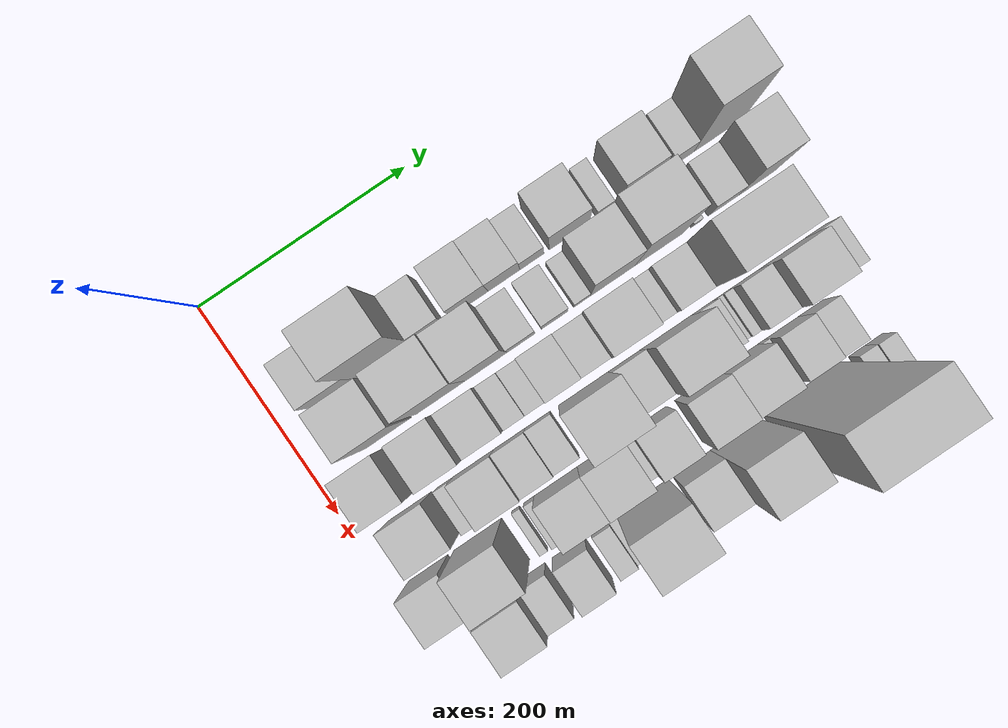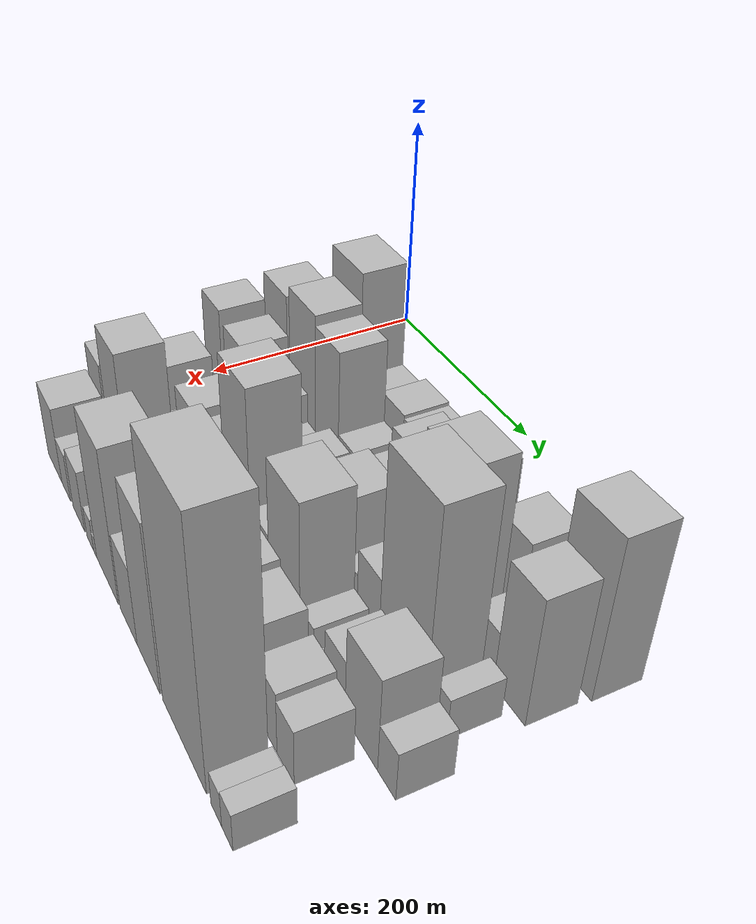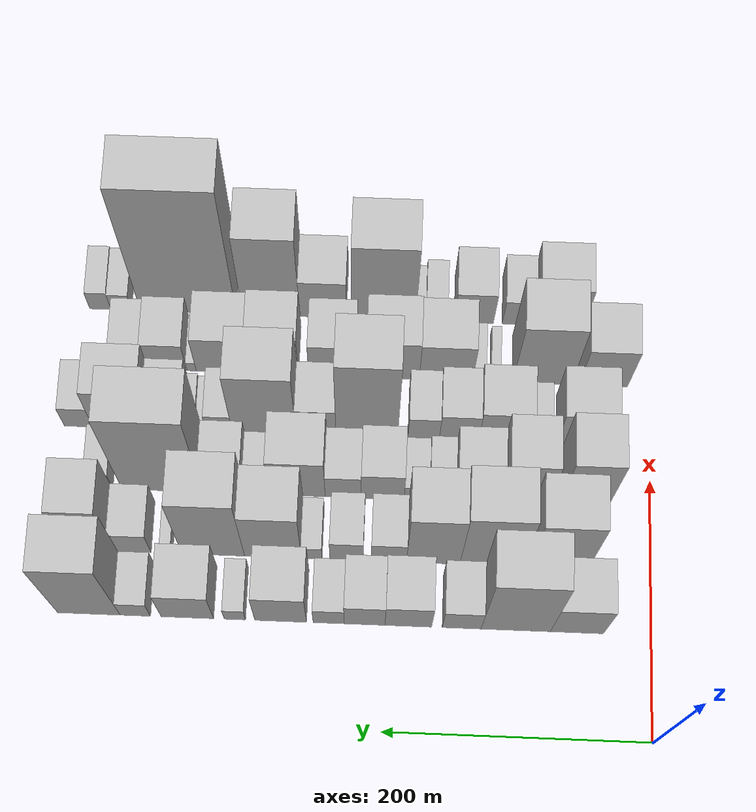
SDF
<sdf version="1.6">
 <world name="default">
  <model name="building_24">
   <static>1</static>
   <pose>100.0000 55.8594 0 0.000000 0.000000 0.000000</pose>
   <link name="link">
    <pose>0 0 37.50 0 0 0</pose>
    <collision name="collision"><geometry><box><size>40.0000 39.8710 75.0000</size></box></geometry></collision>
    <visual name="visual">
     <cast_shadows>0</cast_shadows>
     <geometry><box><size>40.0000 39.8710 75.0000</size></box></geometry>
     <material>
      <script>
       <uri>model://HANNAS_wall/materials/scripts</uri>
       <uri>model://HANNAS_wall/materials/textures</uri>
       <name>vrc/HANNAS_wall</name>
      </script>
     </material>
    </visual>
   </link>
  </model>
  <model name="building_25">
   <static>1</static>
   <pose>100.0000 101.7549 0 0.000000 0.000000 0.000000</pose>
   <link name="link">
    <pose>0 0 73.50 0 0 0</pose>
    <collision name="collision"><geometry><box><size>40.0000 51.9200 147.0000</size></box></geometry></collision>
    <visual name="visual">
     <cast_shadows>0</cast_shadows>
     <geometry><box><size>40.0000 51.9200 147.0000</size></box></geometry>
     <material>
      <script>
       <uri>model://HANNAS_wall/materials/scripts</uri>
       <uri>model://HANNAS_wall/materials/textures</uri>
       <name>vrc/HANNAS_wall</name>
      </script>
     </material>
    </visual>
   </link>
  </model>
  <model name="building_26">
   <static>1</static>
   <pose>100.0000 142.2153 0 0.000000 0.000000 0.000000</pose>
   <link name="link">
    <pose>0 0 25.50 0 0 0</pose>
    <collision name="collision"><geometry><box><size>40.0000 29.0008 51.0000</size></box></geometry></collision>
    <visual name="visual">
     <cast_shadows>0</cast_shadows>
     <geometry><box><size>40.0000 29.0008 51.0000</size></box></geometry>
     <material>
      <script>
       <uri>model://HANNAS_wall/materials/scripts</uri>
       <uri>model://HANNAS_wall/materials/textures</uri>
       <name>vrc/HANNAS_wall</name>
      </script>
     </material>
    </visual>
   </link>
  </model>
  <model name="building_27">
   <static>1</static>
   <pose>100.0000 182.2322 0 0.000000 0.000000 0.000000</pose>
   <link name="link">
    <pose>0 0 30.00 0 0 0</pose>
    <collision name="collision"><geometry><box><size>40.0000 35.0331 60.0000</size></box></geometry></collision>
    <visual name="visual">
     <cast_shadows>0</cast_shadows>
     <geometry><box><size>40.0000 35.0331 60.0000</size></box></geometry>
     <material>
      <script>
       <uri>model://HANNAS_wall/materials/scripts</uri>
       <uri>model://HANNAS_wall/materials/textures</uri>
       <name>vrc/HANNAS_wall</name>
      </script>
     </material>
    </visual>
   </link>
  </model>
  <model name="building_28">
   <static>1</static>
   <pose>100.0000 215.0473 0 0.000000 0.000000 0.000000</pose>
   <link name="link">
    <pose>0 0 28.50 0 0 0</pose>
    <collision name="collision"><geometry><box><size>40.0000 30.5970 57.0000</size></box></geometry></collision>
    <visual name="visual">
     <cast_shadows>0</cast_shadows>
     <geometry><box><size>40.0000 30.5970 57.0000</size></box></geometry>
     <material>
      <script>
       <uri>model://HANNAS_wall/materials/scripts</uri>
       <uri>model://HANNAS_wall/materials/textures</uri>
       <name>vrc/HANNAS_wall</name>
      </script>
     </material>
    </visual>
   </link>
  </model>
  <model name="building_29">
   <static>1</static>
   <pose>100.0000 241.9303 0 0.000000 0.000000 0.000000</pose>
   <link name="link">
    <pose>0 0 21.00 0 0 0</pose>
    <collision name="collision"><geometry><box><size>40.0000 23.1691 42.0000</size></box></geometry></collision>
    <visual name="visual">
     <cast_shadows>0</cast_shadows>
     <geometry><box><size>40.0000 23.1691 42.0000</size></box></geometry>
     <material>
      <script>
       <uri>model://HANNAS_wall/materials/scripts</uri>
       <uri>model://HANNAS_wall/materials/textures</uri>
       <name>vrc/HANNAS_wall</name>
      </script>
     </material>
    </visual>
   </link>
  </model>
  <model name="building_30">
   <static>1</static>
   <pose>100.0000 277.9306 0 0.000000 0.000000 0.000000</pose>
   <link name="link">
    <pose>0 0 37.50 0 0 0</pose>
    <collision name="collision"><geometry><box><size>40.0000 38.8315 75.0000</size></box></geometry></collision>
    <visual name="visual">
     <cast_shadows>0</cast_shadows>
     <geometry><box><size>40.0000 38.8315 75.0000</size></box></geometry>
     <material>
      <script>
       <uri>model://HANNAS_wall/materials/scripts</uri>
       <uri>model://HANNAS_wall/materials/textures</uri>
       <name>vrc/HANNAS_wall</name>
      </script>
     </material>
    </visual>
   </link>
  </model>
  <model name="building_31">
   <static>1</static>
   <pose>100.0000 312.3126 0 0.000000 0.000000 0.000000</pose>
   <link name="link">
    <pose>0 0 15.00 0 0 0</pose>
    <collision name="collision"><geometry><box><size>40.0000 15.9323 30.0000</size></box></geometry></collision>
    <visual name="visual">
     <cast_shadows>0</cast_shadows>
     <geometry><box><size>40.0000 15.9323 30.0000</size></box></geometry>
     <material>
      <script>
       <uri>model://HANNAS_wall/materials/scripts</uri>
       <uri>model://HANNAS_wall/materials/textures</uri>
       <name>vrc/HANNAS_wall</name>
      </script>
     </material>
    </visual>
   </link>
  </model>
  <model name="building_32">
   <static>1</static>
   <pose>100.0000 348.0190 0 0.000000 0.000000 0.000000</pose>
   <link name="link">
    <pose>0 0 34.50 0 0 0</pose>
    <collision name="collision"><geometry><box><size>40.0000 39.4806 69.0000</size></box></geometry></collision>
    <visual name="visual">
     <cast_shadows>0</cast_shadows>
     <geometry><box><size>40.0000 39.4806 69.0000</size></box></geometry>
     <material>
      <script>
       <uri>model://HANNAS_wall/materials/scripts</uri>
       <uri>model://HANNAS_wall/materials/textures</uri>
       <name>vrc/HANNAS_wall</name>
      </script>
     </material>
    </visual>
   </link>
  </model>
  <model name="building_33">
   <static>1</static>
   <pose>100.0000 387.1134 0 0.000000 0.000000 0.000000</pose>
   <link name="link">
    <pose>0 0 19.50 0 0 0</pose>
    <collision name="collision"><geometry><box><size>40.0000 22.7083 39.0000</size></box></geometry></collision>
    <visual name="visual">
     <cast_shadows>0</cast_shadows>
     <geometry><box><size>40.0000 22.7083 39.0000</size></box></geometry>
     <material>
      <script>
       <uri>model://HANNAS_wall/materials/scripts</uri>
       <uri>model://HANNAS_wall/materials/textures</uri>
       <name>vrc/HANNAS_wall</name>
      </script>
     </material>
    </visual>
   </link>
  </model>
  <model name="building_34">
   <static>1</static>
   <pose>100.0000 422.0582 0 0.000000 0.000000 0.000000</pose>
   <link name="link">
    <pose>0 0 70.50 0 0 0</pose>
    <collision name="collision"><geometry><box><size>40.0000 47.1813 141.0000</size></box></geometry></collision>
    <visual name="visual">
     <cast_shadows>0</cast_shadows>
     <geometry><box><size>40.0000 47.1813 141.0000</size></box></geometry>
     <material>
      <script>
       <uri>model://HANNAS_wall/materials/scripts</uri>
       <uri>model://HANNAS_wall/materials/textures</uri>
       <name>vrc/HANNAS_wall</name>
      </script>
     </material>
    </visual>
   </link>
  </model>
  <model name="building_73">
   <static>1</static>
   <pose>149.0000 69.9368 0 0.000000 0.000000 0.000000</pose>
   <link name="link">
    <pose>0 0 60.00 0 0 0</pose>
    <collision name="collision"><geometry><box><size>40.0000 44.5337 120.0000</size></box></geometry></collision>
    <visual name="visual">
     <cast_shadows>0</cast_shadows>
     <geometry><box><size>40.0000 44.5337 120.0000</size></box></geometry>
     <material>
      <script>
       <uri>model://HANNAS_wall/materials/scripts</uri>
       <uri>model://HANNAS_wall/materials/textures</uri>
       <name>vrc/HANNAS_wall</name>
      </script>
     </material>
    </visual>
   </link>
  </model>
  <model name="building_74">
   <static>1</static>
   <pose>149.0000 120.9621 0 0.000000 0.000000 0.000000</pose>
   <link name="link">
    <pose>0 0 66.00 0 0 0</pose>
    <collision name="collision"><geometry><box><size>40.0000 47.5169 132.0000</size></box></geometry></collision>
    <visual name="visual">
     <cast_shadows>0</cast_shadows>
     <geometry><box><size>40.0000 47.5169 132.0000</size></box></geometry>
     <material>
      <script>
       <uri>model://HANNAS_wall/materials/scripts</uri>
       <uri>model://HANNAS_wall/materials/textures</uri>
       <name>vrc/HANNAS_wall</name>
      </script>
     </material>
    </visual>
   </link>
  </model>
  <model name="building_75">
   <static>1</static>
   <pose>149.0000 164.9609 0 0.000000 0.000000 0.000000</pose>
   <link name="link">
    <pose>0 0 61.50 0 0 0</pose>
    <collision name="collision"><geometry><box><size>40.0000 40.4808 123.0000</size></box></geometry></collision>
    <visual name="visual">
     <cast_shadows>0</cast_shadows>
     <geometry><box><size>40.0000 40.4808 123.0000</size></box></geometry>
     <material>
      <script>
       <uri>model://HANNAS_wall/materials/scripts</uri>
       <uri>model://HANNAS_wall/materials/textures</uri>
       <name>vrc/HANNAS_wall</name>
      </script>
     </material>
    </visual>
   </link>
  </model>
  <model name="building_76">
   <static>1</static>
   <pose>149.0000 198.5655 0 0.000000 0.000000 0.000000</pose>
   <link name="link">
    <pose>0 0 24.00 0 0 0</pose>
    <collision name="collision"><geometry><box><size>40.0000 26.7283 48.0000</size></box></geometry></collision>
    <visual name="visual">
     <cast_shadows>0</cast_shadows>
     <geometry><box><size>40.0000 26.7283 48.0000</size></box></geometry>
     <material>
      <script>
       <uri>model://HANNAS_wall/materials/scripts</uri>
       <uri>model://HANNAS_wall/materials/textures</uri>
       <name>vrc/HANNAS_wall</name>
      </script>
     </material>
    </visual>
   </link>
  </model>
  <model name="building_77">
   <static>1</static>
   <pose>149.0000 230.4856 0 0.000000 0.000000 0.000000</pose>
   <link name="link">
    <pose>0 0 24.00 0 0 0</pose>
    <collision name="collision"><geometry><box><size>40.0000 25.1119 48.0000</size></box></geometry></collision>
    <visual name="visual">
     <cast_shadows>0</cast_shadows>
     <geometry><box><size>40.0000 25.1119 48.0000</size></box></geometry>
     <material>
      <script>
       <uri>model://HANNAS_wall/materials/scripts</uri>
       <uri>model://HANNAS_wall/materials/textures</uri>
       <name>vrc/HANNAS_wall</name>
      </script>
     </material>
    </visual>
   </link>
  </model>
  <model name="building_78">
   <static>1</static>
   <pose>149.0000 256.8370 0 0.000000 0.000000 0.000000</pose>
   <link name="link">
    <pose>0 0 15.00 0 0 0</pose>
    <collision name="collision"><geometry><box><size>40.0000 15.5911 30.0000</size></box></geometry></collision>
    <visual name="visual">
     <cast_shadows>0</cast_shadows>
     <geometry><box><size>40.0000 15.5911 30.0000</size></box></geometry>
     <material>
      <script>
       <uri>model://HANNAS_wall/materials/scripts</uri>
       <uri>model://HANNAS_wall/materials/textures</uri>
       <name>vrc/HANNAS_wall</name>
      </script>
     </material>
    </visual>
   </link>
  </model>
  <model name="building_79">
   <static>1</static>
   <pose>149.0000 286.2394 0 0.000000 0.000000 0.000000</pose>
   <link name="link">
    <pose>0 0 55.50 0 0 0</pose>
    <collision name="collision"><geometry><box><size>40.0000 43.2137 111.0000</size></box></geometry></collision>
    <visual name="visual">
     <cast_shadows>0</cast_shadows>
     <geometry><box><size>40.0000 43.2137 111.0000</size></box></geometry>
     <material>
      <script>
       <uri>model://HANNAS_wall/materials/scripts</uri>
       <uri>model://HANNAS_wall/materials/textures</uri>
       <name>vrc/HANNAS_wall</name>
      </script>
     </material>
    </visual>
   </link>
  </model>
  <model name="building_80">
   <static>1</static>
   <pose>149.0000 331.6374 0 0.000000 0.000000 0.000000</pose>
   <link name="link">
    <pose>0 0 70.50 0 0 0</pose>
    <collision name="collision"><geometry><box><size>40.0000 47.5822 141.0000</size></box></geometry></collision>
    <visual name="visual">
     <cast_shadows>0</cast_shadows>
     <geometry><box><size>40.0000 47.5822 141.0000</size></box></geometry>
     <material>
      <script>
       <uri>model://HANNAS_wall/materials/scripts</uri>
       <uri>model://HANNAS_wall/materials/textures</uri>
       <name>vrc/HANNAS_wall</name>
      </script>
     </material>
    </visual>
   </link>
  </model>
  <model name="building_81">
   <static>1</static>
   <pose>149.0000 366.6778 0 0.000000 0.000000 0.000000</pose>
   <link name="link">
    <pose>0 0 10.50 0 0 0</pose>
    <collision name="collision"><geometry><box><size>40.0000 8.4986 21.0000</size></box></geometry></collision>
    <visual name="visual">
     <cast_shadows>0</cast_shadows>
     <geometry><box><size>40.0000 8.4986 21.0000</size></box></geometry>
     <material>
      <script>
       <uri>model://HANNAS_wall/materials/scripts</uri>
       <uri>model://HANNAS_wall/materials/textures</uri>
       <name>vrc/HANNAS_wall</name>
      </script>
     </material>
    </visual>
   </link>
  </model>
  <model name="building_82">
   <static>1</static>
   <pose>149.0000 393.0731 0 0.000000 0.000000 0.000000</pose>
   <link name="link">
    <pose>0 0 24.00 0 0 0</pose>
    <collision name="collision"><geometry><box><size>40.0000 28.2919 48.0000</size></box></geometry></collision>
    <visual name="visual">
     <cast_shadows>0</cast_shadows>
     <geometry><box><size>40.0000 28.2919 48.0000</size></box></geometry>
     <material>
      <script>
       <uri>model://HANNAS_wall/materials/scripts</uri>
       <uri>model://HANNAS_wall/materials/textures</uri>
       <name>vrc/HANNAS_wall</name>
      </script>
     </material>
    </visual>
   </link>
  </model>
  <model name="building_83">
   <static>1</static>
   <pose>149.0000 425.1117 0 0.000000 0.000000 0.000000</pose>
   <link name="link">
    <pose>0 0 55.50 0 0 0</pose>
    <collision name="collision"><geometry><box><size>40.0000 35.7853 111.0000</size></box></geometry></collision>
    <visual name="visual">
     <cast_shadows>0</cast_shadows>
     <geometry><box><size>40.0000 35.7853 111.0000</size></box></geometry>
     <material>
      <script>
       <uri>model://HANNAS_wall/materials/scripts</uri>
       <uri>model://HANNAS_wall/materials/textures</uri>
       <name>vrc/HANNAS_wall</name>
      </script>
     </material>
    </visual>
   </link>
  </model>
  <model name="building_119">
   <static>1</static>
   <pose>198.0000 51.1562 0 0.000000 0.000000 0.000000</pose>
   <link name="link">
    <pose>0 0 54.00 0 0 0</pose>
    <collision name="collision"><geometry><box><size>40.0000 37.3764 108.0000</size></box></geometry></collision>
    <visual name="visual">
     <cast_shadows>0</cast_shadows>
     <geometry><box><size>40.0000 37.3764 108.0000</size></box></geometry>
     <material>
      <script>
       <uri>model://HANNAS_wall/materials/scripts</uri>
       <uri>model://HANNAS_wall/materials/textures</uri>
       <name>vrc/HANNAS_wall</name>
      </script>
     </material>
    </visual>
   </link>
  </model>
  <model name="building_120">
   <static>1</static>
   <pose>198.0000 96.2099 0 0.000000 0.000000 0.000000</pose>
   <link name="link">
    <pose>0 0 49.50 0 0 0</pose>
    <collision name="collision"><geometry><box><size>40.0000 36.7310 99.0000</size></box></geometry></collision>
    <visual name="visual">
     <cast_shadows>0</cast_shadows>
     <geometry><box><size>40.0000 36.7310 99.0000</size></box></geometry>
     <material>
      <script>
       <uri>model://HANNAS_wall/materials/scripts</uri>
       <uri>model://HANNAS_wall/materials/textures</uri>
       <name>vrc/HANNAS_wall</name>
      </script>
     </material>
    </visual>
   </link>
  </model>
  <model name="building_121">
   <static>1</static>
   <pose>198.0000 132.2191 0 0.000000 0.000000 0.000000</pose>
   <link name="link">
    <pose>0 0 33.00 0 0 0</pose>
    <collision name="collision"><geometry><box><size>40.0000 35.2875 66.0000</size></box></geometry></collision>
    <visual name="visual">
     <cast_shadows>0</cast_shadows>
     <geometry><box><size>40.0000 35.2875 66.0000</size></box></geometry>
     <material>
      <script>
       <uri>model://HANNAS_wall/materials/scripts</uri>
       <uri>model://HANNAS_wall/materials/textures</uri>
       <name>vrc/HANNAS_wall</name>
      </script>
     </material>
    </visual>
   </link>
  </model>
  <model name="building_122">
   <static>1</static>
   <pose>198.0000 159.7177 0 0.000000 0.000000 0.000000</pose>
   <link name="link">
    <pose>0 0 19.50 0 0 0</pose>
    <collision name="collision"><geometry><box><size>40.0000 19.7096 39.0000</size></box></geometry></collision>
    <visual name="visual">
     <cast_shadows>0</cast_shadows>
     <geometry><box><size>40.0000 19.7096 39.0000</size></box></geometry>
     <material>
      <script>
       <uri>model://HANNAS_wall/materials/scripts</uri>
       <uri>model://HANNAS_wall/materials/textures</uri>
       <name>vrc/HANNAS_wall</name>
      </script>
     </material>
    </visual>
   </link>
  </model>
  <model name="building_123">
   <static>1</static>
   <pose>198.0000 179.0885 0 0.000000 0.000000 0.000000</pose>
   <link name="link">
    <pose>0 0 16.50 0 0 0</pose>
    <collision name="collision"><geometry><box><size>40.0000 19.0320 33.0000</size></box></geometry></collision>
    <visual name="visual">
     <cast_shadows>0</cast_shadows>
     <geometry><box><size>40.0000 19.0320 33.0000</size></box></geometry>
     <material>
      <script>
       <uri>model://HANNAS_wall/materials/scripts</uri>
       <uri>model://HANNAS_wall/materials/textures</uri>
       <name>vrc/HANNAS_wall</name>
      </script>
     </material>
    </visual>
   </link>
  </model>
  <model name="building_124">
   <static>1</static>
   <pose>198.0000 205.0016 0 0.000000 0.000000 0.000000</pose>
   <link name="link">
    <pose>0 0 30.00 0 0 0</pose>
    <collision name="collision"><geometry><box><size>40.0000 32.7943 60.0000</size></box></geometry></collision>
    <visual name="visual">
     <cast_shadows>0</cast_shadows>
     <geometry><box><size>40.0000 32.7943 60.0000</size></box></geometry>
     <material>
      <script>
       <uri>model://HANNAS_wall/materials/scripts</uri>
       <uri>model://HANNAS_wall/materials/textures</uri>
       <name>vrc/HANNAS_wall</name>
      </script>
     </material>
    </visual>
   </link>
  </model>
  <model name="building_125">
   <static>1</static>
   <pose>198.0000 235.1437 0 0.000000 0.000000 0.000000</pose>
   <link name="link">
    <pose>0 0 25.50 0 0 0</pose>
    <collision name="collision"><geometry><box><size>40.0000 27.4900 51.0000</size></box></geometry></collision>
    <visual name="visual">
     <cast_shadows>0</cast_shadows>
     <geometry><box><size>40.0000 27.4900 51.0000</size></box></geometry>
     <material>
      <script>
       <uri>model://HANNAS_wall/materials/scripts</uri>
       <uri>model://HANNAS_wall/materials/textures</uri>
       <name>vrc/HANNAS_wall</name>
      </script>
     </material>
    </visual>
   </link>
  </model>
  <model name="building_126">
   <static>1</static>
   <pose>198.0000 270.3777 0 0.000000 0.000000 0.000000</pose>
   <link name="link">
    <pose>0 0 42.00 0 0 0</pose>
    <collision name="collision"><geometry><box><size>40.0000 42.9780 84.0000</size></box></geometry></collision>
    <visual name="visual">
     <cast_shadows>0</cast_shadows>
     <geometry><box><size>40.0000 42.9780 84.0000</size></box></geometry>
     <material>
      <script>
       <uri>model://HANNAS_wall/materials/scripts</uri>
       <uri>model://HANNAS_wall/materials/textures</uri>
       <name>vrc/HANNAS_wall</name>
      </script>
     </material>
    </visual>
   </link>
  </model>
  <model name="building_127">
   <static>1</static>
   <pose>198.0000 301.6133 0 0.000000 0.000000 0.000000</pose>
   <link name="link">
    <pose>0 0 16.50 0 0 0</pose>
    <collision name="collision"><geometry><box><size>40.0000 19.4932 33.0000</size></box></geometry></collision>
    <visual name="visual">
     <cast_shadows>0</cast_shadows>
     <geometry><box><size>40.0000 19.4932 33.0000</size></box></geometry>
     <material>
      <script>
       <uri>model://HANNAS_wall/materials/scripts</uri>
       <uri>model://HANNAS_wall/materials/textures</uri>
       <name>vrc/HANNAS_wall</name>
      </script>
     </material>
    </visual>
   </link>
  </model>
  <model name="building_128">
   <static>1</static>
   <pose>198.0000 327.1684 0 0.000000 0.000000 0.000000</pose>
   <link name="link">
    <pose>0 0 28.50 0 0 0</pose>
    <collision name="collision"><geometry><box><size>40.0000 31.6169 57.0000</size></box></geometry></collision>
    <visual name="visual">
     <cast_shadows>0</cast_shadows>
     <geometry><box><size>40.0000 31.6169 57.0000</size></box></geometry>
     <material>
      <script>
       <uri>model://HANNAS_wall/materials/scripts</uri>
       <uri>model://HANNAS_wall/materials/textures</uri>
       <name>vrc/HANNAS_wall</name>
      </script>
     </material>
    </visual>
   </link>
  </model>
  <model name="building_129">
   <static>1</static>
   <pose>198.0000 373.9568 0 0.000000 0.000000 0.000000</pose>
   <link name="link">
    <pose>0 0 85.50 0 0 0</pose>
    <collision name="collision"><geometry><box><size>40.0000 61.9598 171.0000</size></box></geometry></collision>
    <visual name="visual">
     <cast_shadows>0</cast_shadows>
     <geometry><box><size>40.0000 61.9598 171.0000</size></box></geometry>
     <material>
      <script>
       <uri>model://HANNAS_wall/materials/scripts</uri>
       <uri>model://HANNAS_wall/materials/textures</uri>
       <name>vrc/HANNAS_wall</name>
      </script>
     </material>
    </visual>
   </link>
  </model>
  <model name="building_130">
   <static>1</static>
   <pose>198.0000 421.1200 0 0.000000 0.000000 0.000000</pose>
   <link name="link">
    <pose>0 0 18.00 0 0 0</pose>
    <collision name="collision"><geometry><box><size>40.0000 18.3665 36.0000</size></box></geometry></collision>
    <visual name="visual">
     <cast_shadows>0</cast_shadows>
     <geometry><box><size>40.0000 18.3665 36.0000</size></box></geometry>
     <material>
      <script>
       <uri>model://HANNAS_wall/materials/scripts</uri>
       <uri>model://HANNAS_wall/materials/textures</uri>
       <name>vrc/HANNAS_wall</name>
      </script>
     </material>
    </visual>
   </link>
  </model>
  <model name="building_170">
   <static>1</static>
   <pose>247.0000 51.5885 0 0.000000 0.000000 0.000000</pose>
   <link name="link">
    <pose>0 0 34.50 0 0 0</pose>
    <collision name="collision"><geometry><box><size>40.0000 41.0396 69.0000</size></box></geometry></collision>
    <visual name="visual">
     <cast_shadows>0</cast_shadows>
     <geometry><box><size>40.0000 41.0396 69.0000</size></box></geometry>
     <material>
      <script>
       <uri>model://HANNAS_wall/materials/scripts</uri>
       <uri>model://HANNAS_wall/materials/textures</uri>
       <name>vrc/HANNAS_wall</name>
      </script>
     </material>
    </visual>
   </link>
  </model>
  <model name="building_171">
   <static>1</static>
   <pose>247.0000 85.2710 0 0.000000 0.000000 0.000000</pose>
   <link name="link">
    <pose>0 0 15.00 0 0 0</pose>
    <collision name="collision"><geometry><box><size>40.0000 16.3256 30.0000</size></box></geometry></collision>
    <visual name="visual">
     <cast_shadows>0</cast_shadows>
     <geometry><box><size>40.0000 16.3256 30.0000</size></box></geometry>
     <material>
      <script>
       <uri>model://HANNAS_wall/materials/scripts</uri>
       <uri>model://HANNAS_wall/materials/textures</uri>
       <name>vrc/HANNAS_wall</name>
      </script>
     </material>
    </visual>
   </link>
  </model>
  <model name="building_172">
   <static>1</static>
   <pose>247.0000 113.0697 0 0.000000 0.000000 0.000000</pose>
   <link name="link">
    <pose>0 0 33.00 0 0 0</pose>
    <collision name="collision"><geometry><box><size>40.0000 39.2717 66.0000</size></box></geometry></collision>
    <visual name="visual">
     <cast_shadows>0</cast_shadows>
     <geometry><box><size>40.0000 39.2717 66.0000</size></box></geometry>
     <material>
      <script>
       <uri>model://HANNAS_wall/materials/scripts</uri>
       <uri>model://HANNAS_wall/materials/textures</uri>
       <name>vrc/HANNAS_wall</name>
      </script>
     </material>
    </visual>
   </link>
  </model>
  <model name="building_173">
   <static>1</static>
   <pose>247.0000 147.7959 0 0.000000 0.000000 0.000000</pose>
   <link name="link">
    <pose>0 0 28.50 0 0 0</pose>
    <collision name="collision"><geometry><box><size>40.0000 30.1808 57.0000</size></box></geometry></collision>
    <visual name="visual">
     <cast_shadows>0</cast_shadows>
     <geometry><box><size>40.0000 30.1808 57.0000</size></box></geometry>
     <material>
      <script>
       <uri>model://HANNAS_wall/materials/scripts</uri>
       <uri>model://HANNAS_wall/materials/textures</uri>
       <name>vrc/HANNAS_wall</name>
      </script>
     </material>
    </visual>
   </link>
  </model>
  <model name="building_174">
   <static>1</static>
   <pose>247.0000 174.9336 0 0.000000 0.000000 0.000000</pose>
   <link name="link">
    <pose>0 0 24.00 0 0 0</pose>
    <collision name="collision"><geometry><box><size>40.0000 24.0946 48.0000</size></box></geometry></collision>
    <visual name="visual">
     <cast_shadows>0</cast_shadows>
     <geometry><box><size>40.0000 24.0946 48.0000</size></box></geometry>
     <material>
      <script>
       <uri>model://HANNAS_wall/materials/scripts</uri>
       <uri>model://HANNAS_wall/materials/textures</uri>
       <name>vrc/HANNAS_wall</name>
      </script>
     </material>
    </visual>
   </link>
  </model>
  <model name="building_175">
   <static>1</static>
   <pose>247.0000 218.8377 0 0.000000 0.000000 0.000000</pose>
   <link name="link">
    <pose>0 0 79.50 0 0 0</pose>
    <collision name="collision"><geometry><box><size>40.0000 47.7136 159.0000</size></box></geometry></collision>
    <visual name="visual">
     <cast_shadows>0</cast_shadows>
     <geometry><box><size>40.0000 47.7136 159.0000</size></box></geometry>
     <material>
      <script>
       <uri>model://HANNAS_wall/materials/scripts</uri>
       <uri>model://HANNAS_wall/materials/textures</uri>
       <name>vrc/HANNAS_wall</name>
      </script>
     </material>
    </visual>
   </link>
  </model>
  <model name="building_176">
   <static>1</static>
   <pose>247.0000 258.1075 0 0.000000 0.000000 0.000000</pose>
   <link name="link">
    <pose>0 0 28.50 0 0 0</pose>
    <collision name="collision"><geometry><box><size>40.0000 30.8260 57.0000</size></box></geometry></collision>
    <visual name="visual">
     <cast_shadows>0</cast_shadows>
     <geometry><box><size>40.0000 30.8260 57.0000</size></box></geometry>
     <material>
      <script>
       <uri>model://HANNAS_wall/materials/scripts</uri>
       <uri>model://HANNAS_wall/materials/textures</uri>
       <name>vrc/HANNAS_wall</name>
      </script>
     </material>
    </visual>
   </link>
  </model>
  <model name="building_177">
   <static>1</static>
   <pose>247.0000 298.2908 0 0.000000 0.000000 0.000000</pose>
   <link name="link">
    <pose>0 0 63.00 0 0 0</pose>
    <collision name="collision"><geometry><box><size>40.0000 49.5405 126.0000</size></box></geometry></collision>
    <visual name="visual">
     <cast_shadows>0</cast_shadows>
     <geometry><box><size>40.0000 49.5405 126.0000</size></box></geometry>
     <material>
      <script>
       <uri>model://HANNAS_wall/materials/scripts</uri>
       <uri>model://HANNAS_wall/materials/textures</uri>
       <name>vrc/HANNAS_wall</name>
      </script>
     </material>
    </visual>
   </link>
  </model>
  <model name="building_178">
   <static>1</static>
   <pose>247.0000 333.3416 0 0.000000 0.000000 0.000000</pose>
   <link name="link">
    <pose>0 0 18.00 0 0 0</pose>
    <collision name="collision"><geometry><box><size>40.0000 20.5611 36.0000</size></box></geometry></collision>
    <visual name="visual">
     <cast_shadows>0</cast_shadows>
     <geometry><box><size>40.0000 20.5611 36.0000</size></box></geometry>
     <material>
      <script>
       <uri>model://HANNAS_wall/materials/scripts</uri>
       <uri>model://HANNAS_wall/materials/textures</uri>
       <name>vrc/HANNAS_wall</name>
      </script>
     </material>
    </visual>
   </link>
  </model>
  <model name="building_179">
   <static>1</static>
   <pose>247.0000 347.3207 0 0.000000 0.000000 0.000000</pose>
   <link name="link">
    <pose>0 0 7.50 0 0 0</pose>
    <collision name="collision"><geometry><box><size>40.0000 7.3970 15.0000</size></box></geometry></collision>
    <visual name="visual">
     <cast_shadows>0</cast_shadows>
     <geometry><box><size>40.0000 7.3970 15.0000</size></box></geometry>
     <material>
      <script>
       <uri>model://HANNAS_wall/materials/scripts</uri>
       <uri>model://HANNAS_wall/materials/textures</uri>
       <name>vrc/HANNAS_wall</name>
      </script>
     </material>
    </visual>
   </link>
  </model>
  <model name="building_180">
   <static>1</static>
   <pose>247.0000 355.2941 0 0.000000 0.000000 0.000000</pose>
   <link name="link">
    <pose>0 0 10.50 0 0 0</pose>
    <collision name="collision"><geometry><box><size>40.0000 8.5499 21.0000</size></box></geometry></collision>
    <visual name="visual">
     <cast_shadows>0</cast_shadows>
     <geometry><box><size>40.0000 8.5499 21.0000</size></box></geometry>
     <material>
      <script>
       <uri>model://HANNAS_wall/materials/scripts</uri>
       <uri>model://HANNAS_wall/materials/textures</uri>
       <name>vrc/HANNAS_wall</name>
      </script>
     </material>
    </visual>
   </link>
  </model>
  <model name="building_181">
   <static>1</static>
   <pose>247.0000 374.0423 0 0.000000 0.000000 0.000000</pose>
   <link name="link">
    <pose>0 0 25.50 0 0 0</pose>
    <collision name="collision"><geometry><box><size>40.0000 28.9466 51.0000</size></box></geometry></collision>
    <visual name="visual">
     <cast_shadows>0</cast_shadows>
     <geometry><box><size>40.0000 28.9466 51.0000</size></box></geometry>
     <material>
      <script>
       <uri>model://HANNAS_wall/materials/scripts</uri>
       <uri>model://HANNAS_wall/materials/textures</uri>
       <name>vrc/HANNAS_wall</name>
      </script>
     </material>
    </visual>
   </link>
  </model>
  <model name="building_182">
   <static>1</static>
   <pose>247.0000 409.9334 0 0.000000 0.000000 0.000000</pose>
   <link name="link">
    <pose>0 0 40.50 0 0 0</pose>
    <collision name="collision"><geometry><box><size>40.0000 42.8357 81.0000</size></box></geometry></collision>
    <visual name="visual">
     <cast_shadows>0</cast_shadows>
     <geometry><box><size>40.0000 42.8357 81.0000</size></box></geometry>
     <material>
      <script>
       <uri>model://HANNAS_wall/materials/scripts</uri>
       <uri>model://HANNAS_wall/materials/textures</uri>
       <name>vrc/HANNAS_wall</name>
      </script>
     </material>
    </visual>
   </link>
  </model>
  <model name="building_183">
   <static>1</static>
   <pose>247.0000 442.4437 0 0.000000 0.000000 0.000000</pose>
   <link name="link">
    <pose>0 0 21.00 0 0 0</pose>
    <collision name="collision"><geometry><box><size>40.0000 22.1850 42.0000</size></box></geometry></collision>
    <visual name="visual">
     <cast_shadows>0</cast_shadows>
     <geometry><box><size>40.0000 22.1850 42.0000</size></box></geometry>
     <material>
      <script>
       <uri>model://HANNAS_wall/materials/scripts</uri>
       <uri>model://HANNAS_wall/materials/textures</uri>
       <name>vrc/HANNAS_wall</name>
      </script>
     </material>
    </visual>
   </link>
  </model>
  <model name="building_216">
   <static>1</static>
   <pose>296.0000 35.8066 0 0.000000 0.000000 0.000000</pose>
   <link name="link">
    <pose>0 0 37.50 0 0 0</pose>
    <collision name="collision"><geometry><box><size>40.0000 37.9123 75.0000</size></box></geometry></collision>
    <visual name="visual">
     <cast_shadows>0</cast_shadows>
     <geometry><box><size>40.0000 37.9123 75.0000</size></box></geometry>
     <material>
      <script>
       <uri>model://HANNAS_wall/materials/scripts</uri>
       <uri>model://HANNAS_wall/materials/textures</uri>
       <name>vrc/HANNAS_wall</name>
      </script>
     </material>
    </visual>
   </link>
  </model>
  <model name="building_217">
   <static>1</static>
   <pose>296.0000 83.7766 0 0.000000 0.000000 0.000000</pose>
   <link name="link">
    <pose>0 0 58.50 0 0 0</pose>
    <collision name="collision"><geometry><box><size>40.0000 46.0277 117.0000</size></box></geometry></collision>
    <visual name="visual">
     <cast_shadows>0</cast_shadows>
     <geometry><box><size>40.0000 46.0277 117.0000</size></box></geometry>
     <material>
      <script>
       <uri>model://HANNAS_wall/materials/scripts</uri>
       <uri>model://HANNAS_wall/materials/textures</uri>
       <name>vrc/HANNAS_wall</name>
      </script>
     </material>
    </visual>
   </link>
  </model>
  <model name="building_218">
   <static>1</static>
   <pose>296.0000 120.5551 0 0.000000 0.000000 0.000000</pose>
   <link name="link">
    <pose>0 0 9.00 0 0 0</pose>
    <collision name="collision"><geometry><box><size>40.0000 7.5294 18.0000</size></box></geometry></collision>
    <visual name="visual">
     <cast_shadows>0</cast_shadows>
     <geometry><box><size>40.0000 7.5294 18.0000</size></box></geometry>
     <material>
      <script>
       <uri>model://HANNAS_wall/materials/scripts</uri>
       <uri>model://HANNAS_wall/materials/textures</uri>
       <name>vrc/HANNAS_wall</name>
      </script>
     </material>
    </visual>
   </link>
  </model>
  <model name="building_219">
   <static>1</static>
   <pose>296.0000 133.1692 0 0.000000 0.000000 0.000000</pose>
   <link name="link">
    <pose>0 0 12.00 0 0 0</pose>
    <collision name="collision"><geometry><box><size>40.0000 9.6990 24.0000</size></box></geometry></collision>
    <visual name="visual">
     <cast_shadows>0</cast_shadows>
     <geometry><box><size>40.0000 9.6990 24.0000</size></box></geometry>
     <material>
      <script>
       <uri>model://HANNAS_wall/materials/scripts</uri>
       <uri>model://HANNAS_wall/materials/textures</uri>
       <name>vrc/HANNAS_wall</name>
      </script>
     </material>
    </visual>
   </link>
  </model>
  <model name="building_220">
   <static>1</static>
   <pose>296.0000 158.8802 0 0.000000 0.000000 0.000000</pose>
   <link name="link">
    <pose>0 0 36.00 0 0 0</pose>
    <collision name="collision"><geometry><box><size>40.0000 41.7230 72.0000</size></box></geometry></collision>
    <visual name="visual">
     <cast_shadows>0</cast_shadows>
     <geometry><box><size>40.0000 41.7230 72.0000</size></box></geometry>
     <material>
      <script>
       <uri>model://HANNAS_wall/materials/scripts</uri>
       <uri>model://HANNAS_wall/materials/textures</uri>
       <name>vrc/HANNAS_wall</name>
      </script>
     </material>
    </visual>
   </link>
  </model>
  <model name="building_221">
   <static>1</static>
   <pose>296.0000 200.4881 0 0.000000 0.000000 0.000000</pose>
   <link name="link">
    <pose>0 0 37.50 0 0 0</pose>
    <collision name="collision"><geometry><box><size>40.0000 41.4928 75.0000</size></box></geometry></collision>
    <visual name="visual">
     <cast_shadows>0</cast_shadows>
     <geometry><box><size>40.0000 41.4928 75.0000</size></box></geometry>
     <material>
      <script>
       <uri>model://HANNAS_wall/materials/scripts</uri>
       <uri>model://HANNAS_wall/materials/textures</uri>
       <name>vrc/HANNAS_wall</name>
      </script>
     </material>
    </visual>
   </link>
  </model>
  <model name="building_222">
   <static>1</static>
   <pose>296.0000 225.1858 0 0.000000 0.000000 0.000000</pose>
   <link name="link">
    <pose>0 0 9.00 0 0 0</pose>
    <collision name="collision"><geometry><box><size>40.0000 7.9025 18.0000</size></box></geometry></collision>
    <visual name="visual">
     <cast_shadows>0</cast_shadows>
     <geometry><box><size>40.0000 7.9025 18.0000</size></box></geometry>
     <material>
      <script>
       <uri>model://HANNAS_wall/materials/scripts</uri>
       <uri>model://HANNAS_wall/materials/textures</uri>
       <name>vrc/HANNAS_wall</name>
      </script>
     </material>
    </visual>
   </link>
  </model>
  <model name="building_223">
   <static>1</static>
   <pose>296.0000 247.5857 0 0.000000 0.000000 0.000000</pose>
   <link name="link">
    <pose>0 0 31.50 0 0 0</pose>
    <collision name="collision"><geometry><box><size>40.0000 36.8973 63.0000</size></box></geometry></collision>
    <visual name="visual">
     <cast_shadows>0</cast_shadows>
     <geometry><box><size>40.0000 36.8973 63.0000</size></box></geometry>
     <material>
      <script>
       <uri>model://HANNAS_wall/materials/scripts</uri>
       <uri>model://HANNAS_wall/materials/textures</uri>
       <name>vrc/HANNAS_wall</name>
      </script>
     </material>
    </visual>
   </link>
  </model>
  <model name="building_224">
   <static>1</static>
   <pose>296.0000 293.7889 0 0.000000 0.000000 0.000000</pose>
   <link name="link">
    <pose>0 0 37.50 0 0 0</pose>
    <collision name="collision"><geometry><box><size>40.0000 39.5093 75.0000</size></box></geometry></collision>
    <visual name="visual">
     <cast_shadows>0</cast_shadows>
     <geometry><box><size>40.0000 39.5093 75.0000</size></box></geometry>
     <material>
      <script>
       <uri>model://HANNAS_wall/materials/scripts</uri>
       <uri>model://HANNAS_wall/materials/textures</uri>
       <name>vrc/HANNAS_wall</name>
      </script>
     </material>
    </visual>
   </link>
  </model>
  <model name="building_225">
   <static>1</static>
   <pose>296.0000 333.9141 0 0.000000 0.000000 0.000000</pose>
   <link name="link">
    <pose>0 0 34.50 0 0 0</pose>
    <collision name="collision"><geometry><box><size>40.0000 40.7411 69.0000</size></box></geometry></collision>
    <visual name="visual">
     <cast_shadows>0</cast_shadows>
     <geometry><box><size>40.0000 40.7411 69.0000</size></box></geometry>
     <material>
      <script>
       <uri>model://HANNAS_wall/materials/scripts</uri>
       <uri>model://HANNAS_wall/materials/textures</uri>
       <name>vrc/HANNAS_wall</name>
      </script>
     </material>
    </visual>
   </link>
  </model>
  <model name="building_226">
   <static>1</static>
   <pose>296.0000 357.9371 0 0.000000 0.000000 0.000000</pose>
   <link name="link">
    <pose>0 0 9.00 0 0 0</pose>
    <collision name="collision"><geometry><box><size>40.0000 7.3048 18.0000</size></box></geometry></collision>
    <visual name="visual">
     <cast_shadows>0</cast_shadows>
     <geometry><box><size>40.0000 7.3048 18.0000</size></box></geometry>
     <material>
      <script>
       <uri>model://HANNAS_wall/materials/scripts</uri>
       <uri>model://HANNAS_wall/materials/textures</uri>
       <name>vrc/HANNAS_wall</name>
      </script>
     </material>
    </visual>
   </link>
  </model>
  <model name="building_227">
   <static>1</static>
   <pose>296.0000 377.7127 0 0.000000 0.000000 0.000000</pose>
   <link name="link">
    <pose>0 0 27.00 0 0 0</pose>
    <collision name="collision"><geometry><box><size>40.0000 32.2463 54.0000</size></box></geometry></collision>
    <visual name="visual">
     <cast_shadows>0</cast_shadows>
     <geometry><box><size>40.0000 32.2463 54.0000</size></box></geometry>
     <material>
      <script>
       <uri>model://HANNAS_wall/materials/scripts</uri>
       <uri>model://HANNAS_wall/materials/textures</uri>
       <name>vrc/HANNAS_wall</name>
      </script>
     </material>
    </visual>
   </link>
  </model>
  <model name="building_228">
   <static>1</static>
   <pose>296.0000 406.0892 0 0.000000 0.000000 0.000000</pose>
   <link name="link">
    <pose>0 0 24.00 0 0 0</pose>
    <collision name="collision"><geometry><box><size>40.0000 24.5069 48.0000</size></box></geometry></collision>
    <visual name="visual">
     <cast_shadows>0</cast_shadows>
     <geometry><box><size>40.0000 24.5069 48.0000</size></box></geometry>
     <material>
      <script>
       <uri>model://HANNAS_wall/materials/scripts</uri>
       <uri>model://HANNAS_wall/materials/textures</uri>
       <name>vrc/HANNAS_wall</name>
      </script>
     </material>
    </visual>
   </link>
  </model>
  <model name="building_264">
   <static>1</static>
   <pose>345.0000 70.8892 0 0.000000 0.000000 0.000000</pose>
   <link name="link">
    <pose>0 0 36.00 0 0 0</pose>
    <collision name="collision"><geometry><box><size>40.0000 40.5670 72.0000</size></box></geometry></collision>
    <visual name="visual">
     <cast_shadows>0</cast_shadows>
     <geometry><box><size>40.0000 40.5670 72.0000</size></box></geometry>
     <material>
      <script>
       <uri>model://HANNAS_wall/materials/scripts</uri>
       <uri>model://HANNAS_wall/materials/textures</uri>
       <name>vrc/HANNAS_wall</name>
      </script>
     </material>
    </visual>
   </link>
  </model>
  <model name="building_265">
   <static>1</static>
   <pose>345.0000 103.2970 0 0.000000 0.000000 0.000000</pose>
   <link name="link">
    <pose>0 0 22.50 0 0 0</pose>
    <collision name="collision"><geometry><box><size>40.0000 24.2486 45.0000</size></box></geometry></collision>
    <visual name="visual">
     <cast_shadows>0</cast_shadows>
     <geometry><box><size>40.0000 24.2486 45.0000</size></box></geometry>
     <material>
      <script>
       <uri>model://HANNAS_wall/materials/scripts</uri>
       <uri>model://HANNAS_wall/materials/textures</uri>
       <name>vrc/HANNAS_wall</name>
      </script>
     </material>
    </visual>
   </link>
  </model>
  <model name="building_266">
   <static>1</static>
   <pose>345.0000 137.8947 0 0.000000 0.000000 0.000000</pose>
   <link name="link">
    <pose>0 0 28.50 0 0 0</pose>
    <collision name="collision"><geometry><box><size>40.0000 30.9468 57.0000</size></box></geometry></collision>
    <visual name="visual">
     <cast_shadows>0</cast_shadows>
     <geometry><box><size>40.0000 30.9468 57.0000</size></box></geometry>
     <material>
      <script>
       <uri>model://HANNAS_wall/materials/scripts</uri>
       <uri>model://HANNAS_wall/materials/textures</uri>
       <name>vrc/HANNAS_wall</name>
      </script>
     </material>
    </visual>
   </link>
  </model>
  <model name="building_267">
   <static>1</static>
   <pose>345.0000 167.7625 0 0.000000 0.000000 0.000000</pose>
   <link name="link">
    <pose>0 0 15.00 0 0 0</pose>
    <collision name="collision"><geometry><box><size>40.0000 16.7889 30.0000</size></box></geometry></collision>
    <visual name="visual">
     <cast_shadows>0</cast_shadows>
     <geometry><box><size>40.0000 16.7889 30.0000</size></box></geometry>
     <material>
      <script>
       <uri>model://HANNAS_wall/materials/scripts</uri>
       <uri>model://HANNAS_wall/materials/textures</uri>
       <name>vrc/HANNAS_wall</name>
      </script>
     </material>
    </visual>
   </link>
  </model>
  <model name="building_268">
   <static>1</static>
   <pose>345.0000 180.0876 0 0.000000 0.000000 0.000000</pose>
   <link name="link">
    <pose>0 0 9.00 0 0 0</pose>
    <collision name="collision"><geometry><box><size>40.0000 7.8614 18.0000</size></box></geometry></collision>
    <visual name="visual">
     <cast_shadows>0</cast_shadows>
     <geometry><box><size>40.0000 7.8614 18.0000</size></box></geometry>
     <material>
      <script>
       <uri>model://HANNAS_wall/materials/scripts</uri>
       <uri>model://HANNAS_wall/materials/textures</uri>
       <name>vrc/HANNAS_wall</name>
      </script>
     </material>
    </visual>
   </link>
  </model>
  <model name="building_269">
   <static>1</static>
   <pose>345.0000 209.3240 0 0.000000 0.000000 0.000000</pose>
   <link name="link">
    <pose>0 0 69.00 0 0 0</pose>
    <collision name="collision"><geometry><box><size>40.0000 50.6114 138.0000</size></box></geometry></collision>
    <visual name="visual">
     <cast_shadows>0</cast_shadows>
     <geometry><box><size>40.0000 50.6114 138.0000</size></box></geometry>
     <material>
      <script>
       <uri>model://HANNAS_wall/materials/scripts</uri>
       <uri>model://HANNAS_wall/materials/textures</uri>
       <name>vrc/HANNAS_wall</name>
      </script>
     </material>
    </visual>
   </link>
  </model>
  <model name="building_270">
   <static>1</static>
   <pose>345.0000 257.0457 0 0.000000 0.000000 0.000000</pose>
   <link name="link">
    <pose>0 0 34.50 0 0 0</pose>
    <collision name="collision"><geometry><box><size>40.0000 36.8318 69.0000</size></box></geometry></collision>
    <visual name="visual">
     <cast_shadows>0</cast_shadows>
     <geometry><box><size>40.0000 36.8318 69.0000</size></box></geometry>
     <material>
      <script>
       <uri>model://HANNAS_wall/materials/scripts</uri>
       <uri>model://HANNAS_wall/materials/textures</uri>
       <name>vrc/HANNAS_wall</name>
      </script>
     </material>
    </visual>
   </link>
  </model>
  <model name="building_271">
   <static>1</static>
   <pose>345.0000 298.1344 0 0.000000 0.000000 0.000000</pose>
   <link name="link">
    <pose>0 0 73.50 0 0 0</pose>
    <collision name="collision"><geometry><box><size>40.0000 45.3457 147.0000</size></box></geometry></collision>
    <visual name="visual">
     <cast_shadows>0</cast_shadows>
     <geometry><box><size>40.0000 45.3457 147.0000</size></box></geometry>
     <material>
      <script>
       <uri>model://HANNAS_wall/materials/scripts</uri>
       <uri>model://HANNAS_wall/materials/textures</uri>
       <name>vrc/HANNAS_wall</name>
      </script>
     </material>
    </visual>
   </link>
  </model>
  <model name="building_272">
   <static>1</static>
   <pose>345.0000 363.7853 0 0.000000 0.000000 0.000000</pose>
   <link name="link">
    <pose>0 0 111.00 0 0 0</pose>
    <collision name="collision"><geometry><box><size>40.0000 75.9560 222.0000</size></box></geometry></collision>
    <visual name="visual">
     <cast_shadows>0</cast_shadows>
     <geometry><box><size>40.0000 75.9560 222.0000</size></box></geometry>
     <material>
      <script>
       <uri>model://HANNAS_wall/materials/scripts</uri>
       <uri>model://HANNAS_wall/materials/textures</uri>
       <name>vrc/HANNAS_wall</name>
      </script>
     </material>
    </visual>
   </link>
  </model>
  <model name="building_273">
   <static>1</static>
   <pose>345.0000 417.0635 0 0.000000 0.000000 0.000000</pose>
   <link name="link">
    <pose>0 0 15.00 0 0 0</pose>
    <collision name="collision"><geometry><box><size>40.0000 16.6004 30.0000</size></box></geometry></collision>
    <visual name="visual">
     <cast_shadows>0</cast_shadows>
     <geometry><box><size>40.0000 16.6004 30.0000</size></box></geometry>
     <material>
      <script>
       <uri>model://HANNAS_wall/materials/scripts</uri>
       <uri>model://HANNAS_wall/materials/textures</uri>
       <name>vrc/HANNAS_wall</name>
      </script>
     </material>
    </visual>
   </link>
  </model>
  <model name="building_274">
   <static>1</static>
   <pose>345.0000 433.7480 0 0.000000 0.000000 0.000000</pose>
   <link name="link">
    <pose>0 0 16.50 0 0 0</pose>
    <collision name="collision"><geometry><box><size>40.0000 16.7687 33.0000</size></box></geometry></collision>
    <visual name="visual">
     <cast_shadows>0</cast_shadows>
     <geometry><box><size>40.0000 16.7687 33.0000</size></box></geometry>
     <material>
      <script>
       <uri>model://HANNAS_wall/materials/scripts</uri>
       <uri>model://HANNAS_wall/materials/textures</uri>
       <name>vrc/HANNAS_wall</name>
      </script>
     </material>
    </visual>
   </link>
  </model>
 </world>
</sdf>
